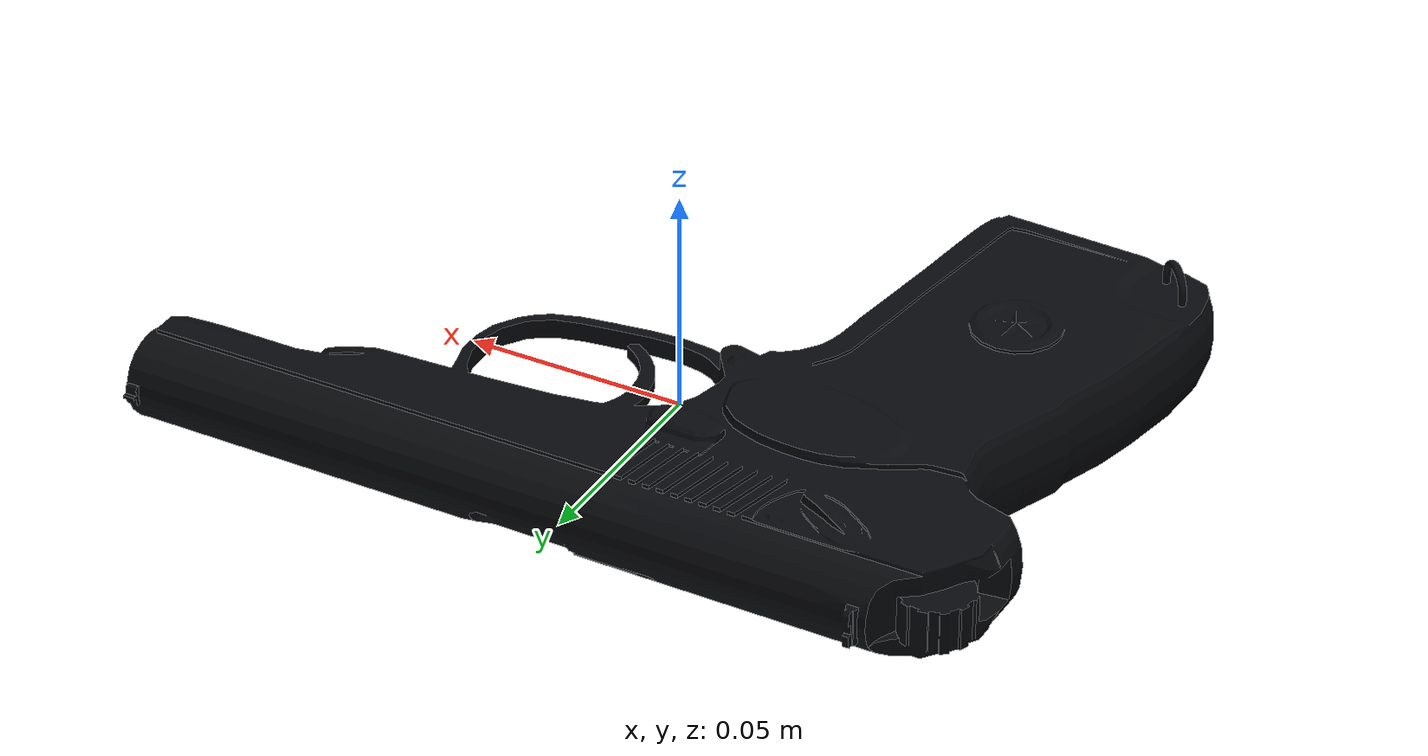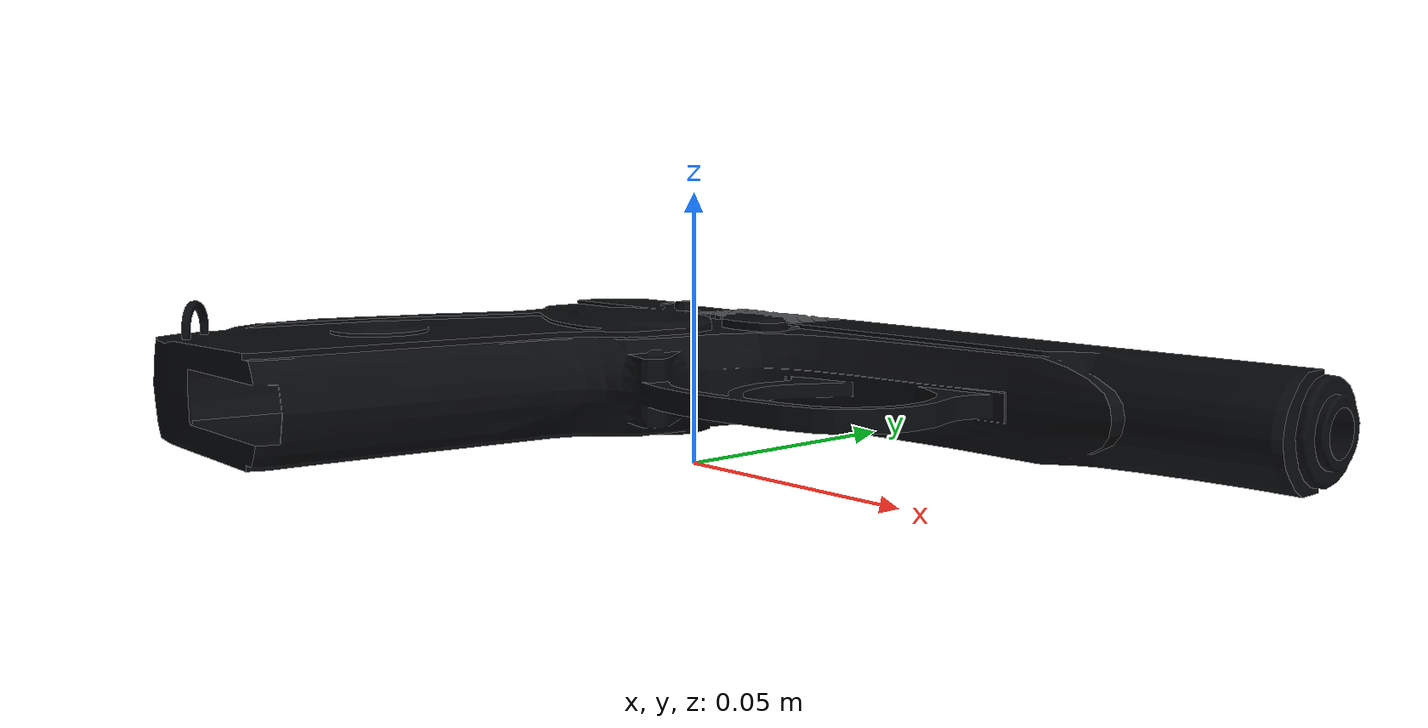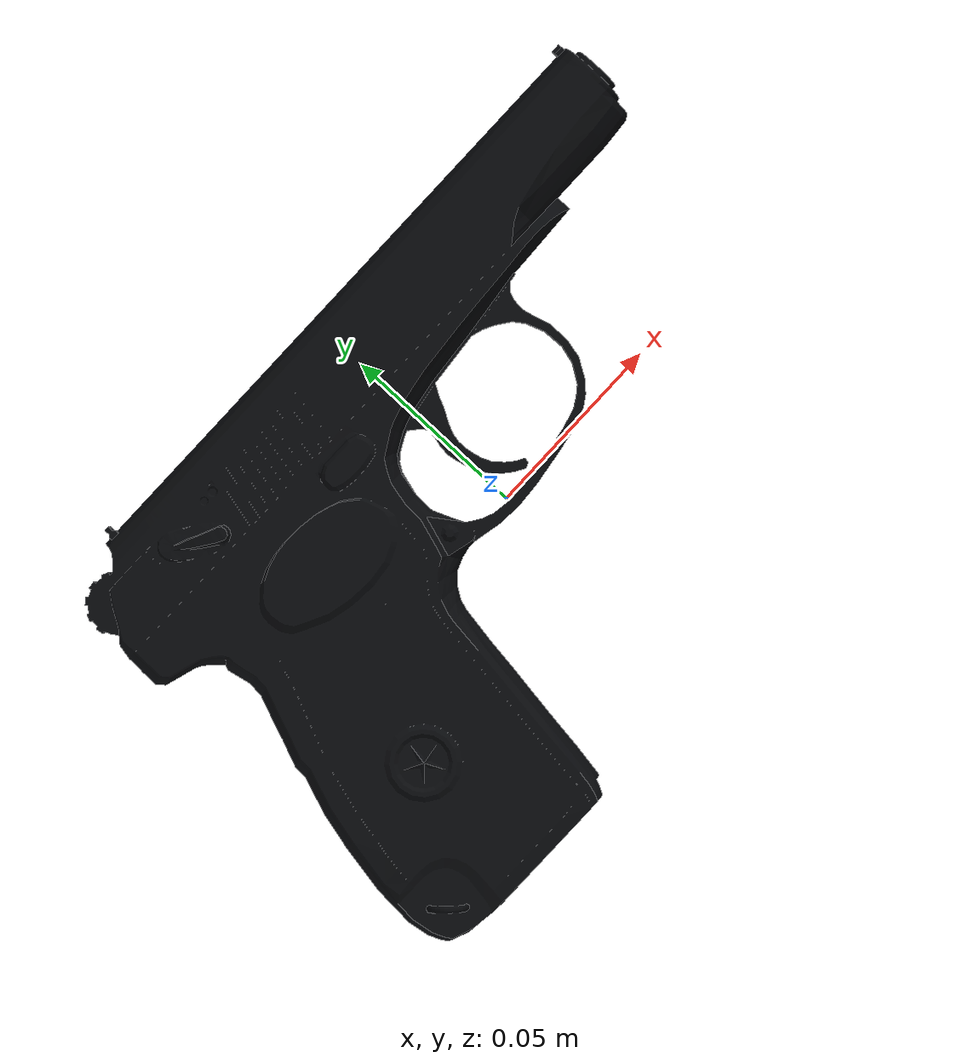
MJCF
<mujoco model="custom_obvious_mesh_turbosquid_pistol">
  <asset>
    <mesh name="visual_mesh" file="turbosquid_pistol.obj" />
  </asset>
  <worldbody>
    <body>
      <body name="object">
        <geom conaffinity="0" contype="0" group="1" mesh="visual_mesh" rgba="0.03 0.035 0.045 1" type="mesh" />

        <geom
          density="100"
          friction="0.95 0.3 0.1"
          group="0"
          pos="0.0000 0.0000 0.0250"
          rgba="0.8 0.8 0.8 0.0"
          size="0.1050 0.0750 0.0250"
          type="box"
        />
        <geom
          name="reg_bbox"
          conaffinity="0"
          contype="0"
          group="3"
          pos="0.0000 0.0000 0.0250"
          rgba="0 0 0 0"
          size="0.1050 0.0750 0.0250"
          type="box"
        />
      </body>
      <site rgba="0 0 0 0" size="0.005" pos="0 0 0" name="bottom_site" />
      <site rgba="0 0 0 0" size="0.005" pos="0 0 0.0500" name="top_site" />
      <site rgba="0 0 0 0" size="0.005" pos="0.1050 0.1050 0" name="horizontal_radius_site" />
    </body>
  </worldbody>
</mujoco>
